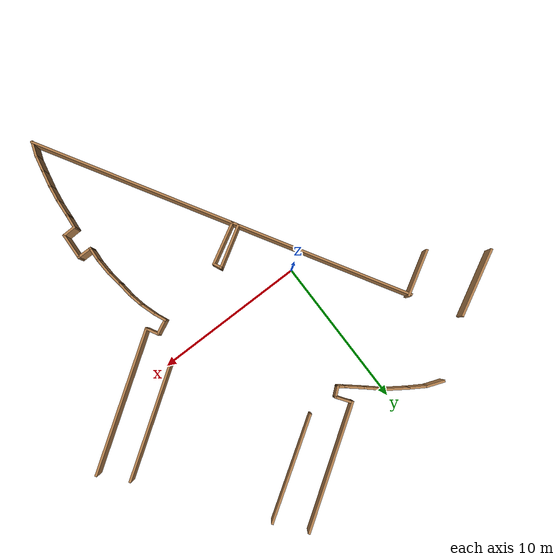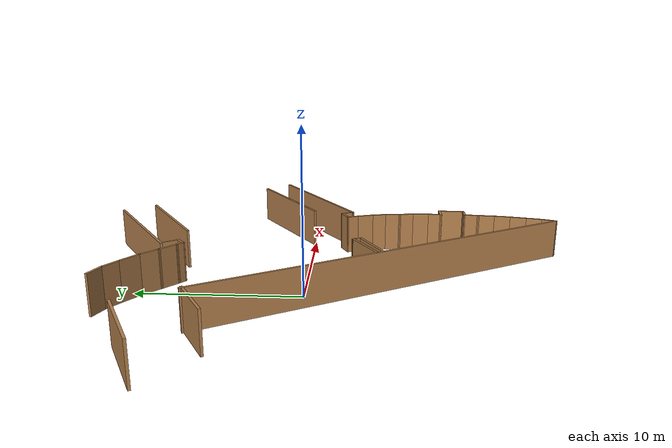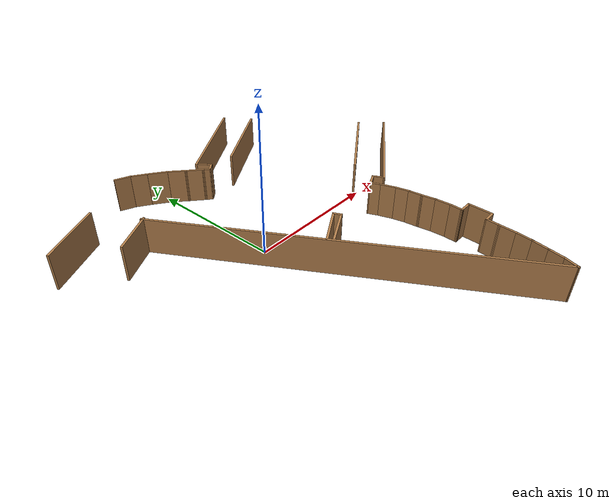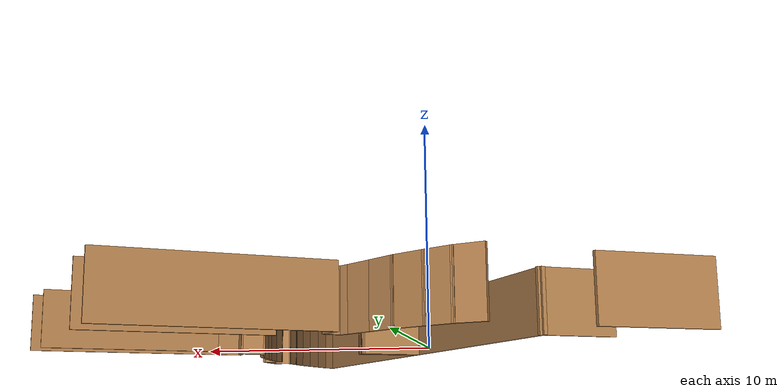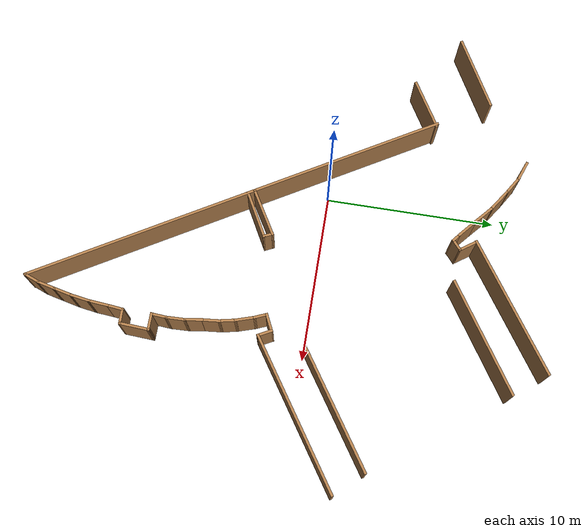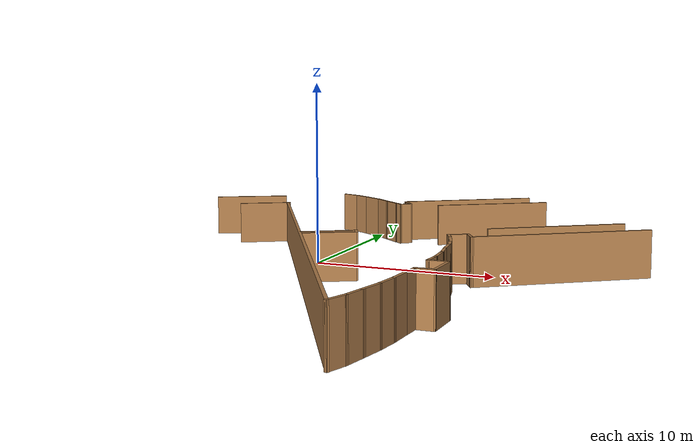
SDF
<?xml version='1.0'?>
<sdf version='1.6'>
  <model name='lobby'>
    <pose frame=''>3.40998 -1.30751 0 0 -0 0</pose>
    <link name='Wall_0'>
      <collision name='Wall_0_Collision'>
        <geometry>
          <box>
            <size>25.6992 0.15 2.5</size>
          </box>
        </geometry>
        <pose frame=''>0 0 1.25 0 -0 0</pose>
      </collision>
      <visual name='Wall_0_Visual'>
        <pose frame=''>0 0 1.25 0 -0 0</pose>
        <geometry>
          <box>
            <size>25.6992 0.15 2.5</size>
          </box>
        </geometry>
        <material>
          <script>
            <uri>file://media/materials/scripts/gazebo.material</uri>
            <name>Gazebo/Wood</name>
          </script>
          <ambient>0.309804 0.309804 0.309804 1</ambient>
        </material>
      </visual>
      <pose frame=''>-1.82314 -3.91274 0 0 0 -1.03666</pose>
    </link>
    <link name='Wall_10'>
      <collision name='Wall_10_Collision'>
        <geometry>
          <box>
            <size>1.05209 0.15 2.5</size>
          </box>
        </geometry>
        <pose frame=''>0 0 1.25 0 -0 0</pose>
      </collision>
      <visual name='Wall_10_Visual'>
        <pose frame=''>0 0 1.25 0 -0 0</pose>
        <geometry>
          <box>
            <size>1.05209 0.15 2.5</size>
          </box>
        </geometry>
        <material>
          <script>
            <uri>file://media/materials/scripts/gazebo.material</uri>
            <name>Gazebo/Wood</name>
          </script>
          <ambient>1 1 1 1</ambient>
        </material>
      </visual>
      <pose frame=''>6.25907 -7.36735 0 0 -0 3.14159</pose>
    </link>
    <link name='Wall_11'>
      <collision name='Wall_11_Collision'>
        <geometry>
          <box>
            <size>1.00886 0.15 2.5</size>
          </box>
        </geometry>
        <pose frame=''>0 0 1.25 0 -0 0</pose>
      </collision>
      <visual name='Wall_11_Visual'>
        <pose frame=''>0 0 1.25 0 -0 0</pose>
        <geometry>
          <box>
            <size>1.00886 0.15 2.5</size>
          </box>
        </geometry>
        <material>
          <script>
            <uri>file://media/materials/scripts/gazebo.material</uri>
            <name>Gazebo/Wood</name>
          </script>
          <ambient>1 1 1 1</ambient>
        </material>
      </visual>
      <pose frame=''>5.83894 -6.93903 0 0 -0 1.49873</pose>
    </link>
    <link name='Wall_12'>
      <collision name='Wall_12_Collision'>
        <geometry>
          <box>
            <size>1.20804 0.15 2.5</size>
          </box>
        </geometry>
        <pose frame=''>0 0 1.25 0 -0 0</pose>
      </collision>
      <visual name='Wall_12_Visual'>
        <pose frame=''>0 0 1.25 0 -0 0</pose>
        <geometry>
          <box>
            <size>1.20804 0.15 2.5</size>
          </box>
        </geometry>
        <material>
          <script>
            <uri>file://media/materials/scripts/gazebo.material</uri>
            <name>Gazebo/Wood</name>
          </script>
          <ambient>1 1 1 1</ambient>
        </material>
      </visual>
      <pose frame=''>5.85117 -5.98203 0 0 -0 1.60614</pose>
    </link>
    <link name='Wall_13'>
      <collision name='Wall_13_Collision'>
        <geometry>
          <box>
            <size>1.09089 0.15 2.5</size>
          </box>
        </geometry>
        <pose frame=''>0 0 1.25 0 -0 0</pose>
      </collision>
      <visual name='Wall_13_Visual'>
        <pose frame=''>0 0 1.25 0 -0 0</pose>
        <geometry>
          <box>
            <size>1.09089 0.15 2.5</size>
          </box>
        </geometry>
        <material>
          <script>
            <uri>file://media/materials/scripts/gazebo.material</uri>
            <name>Gazebo/Wood</name>
          </script>
          <ambient>1 1 1 1</ambient>
        </material>
      </visual>
      <pose frame=''>5.76269 -4.9881 0 0 -0 1.71969</pose>
    </link>
    <link name='Wall_14'>
      <collision name='Wall_14_Collision'>
        <geometry>
          <box>
            <size>1.13142 0.15 2.5</size>
          </box>
        </geometry>
        <pose frame=''>0 0 1.25 0 -0 0</pose>
      </collision>
      <visual name='Wall_14_Visual'>
        <pose frame=''>0 0 1.25 0 -0 0</pose>
        <geometry>
          <box>
            <size>1.13142 0.15 2.5</size>
          </box>
        </geometry>
        <material>
          <script>
            <uri>file://media/materials/scripts/gazebo.material</uri>
            <name>Gazebo/Wood</name>
          </script>
          <ambient>1 1 1 1</ambient>
        </material>
      </visual>
      <pose frame=''>5.64638 -4.03436 0 0 -0 1.66575</pose>
    </link>
    <link name='Wall_15'>
      <collision name='Wall_15_Collision'>
        <geometry>
          <box>
            <size>1.05333 0.15 2.5</size>
          </box>
        </geometry>
        <pose frame=''>0 0 1.25 0 -0 0</pose>
      </collision>
      <visual name='Wall_15_Visual'>
        <pose frame=''>0 0 1.25 0 -0 0</pose>
        <geometry>
          <box>
            <size>1.05333 0.15 2.5</size>
          </box>
        </geometry>
        <material>
          <script>
            <uri>file://media/materials/scripts/gazebo.material</uri>
            <name>Gazebo/Wood</name>
          </script>
          <ambient>1 1 1 1</ambient>
        </material>
      </visual>
      <pose frame=''>5.50681 -3.10388 0 0 -0 1.77829</pose>
    </link>
    <link name='Wall_16'>
      <collision name='Wall_16_Collision'>
        <geometry>
          <box>
            <size>1.22409 0.15 2.5</size>
          </box>
        </geometry>
        <pose frame=''>0 0 1.25 0 -0 0</pose>
      </collision>
      <visual name='Wall_16_Visual'>
        <pose frame=''>0 0 1.25 0 -0 0</pose>
        <geometry>
          <box>
            <size>1.22409 0.15 2.5</size>
          </box>
        </geometry>
        <material>
          <script>
            <uri>file://media/materials/scripts/gazebo.material</uri>
            <name>Gazebo/Wood</name>
          </script>
          <ambient>1 1 1 1</ambient>
        </material>
      </visual>
      <pose frame=''>5.25093 -2.15014 0 0 -0 1.87885</pose>
    </link>
    <link name='Wall_17'>
      <collision name='Wall_17_Collision'>
        <geometry>
          <box>
            <size>0.858631 0.15 2.5</size>
          </box>
        </geometry>
        <pose frame=''>0 0 1.25 0 -0 0</pose>
      </collision>
      <visual name='Wall_17_Visual'>
        <pose frame=''>0 0 1.25 0 -0 0</pose>
        <geometry>
          <box>
            <size>0.858631 0.15 2.5</size>
          </box>
        </geometry>
        <material>
          <script>
            <uri>file://media/materials/scripts/gazebo.material</uri>
            <name>Gazebo/Wood</name>
          </script>
          <ambient>1 1 1 1</ambient>
        </material>
      </visual>
      <pose frame=''>4.94852 -1.31271 0 0 -0 1.97569</pose>
    </link>
    <link name='Wall_18'>
      <collision name='Wall_18_Collision'>
        <geometry>
          <box>
            <size>1.12811 0.15 2.5</size>
          </box>
        </geometry>
        <pose frame=''>0 0 1.25 0 -0 0</pose>
      </collision>
      <visual name='Wall_18_Visual'>
        <pose frame=''>0 0 1.25 0 -0 0</pose>
        <geometry>
          <box>
            <size>1.12811 0.15 2.5</size>
          </box>
        </geometry>
        <material>
          <script>
            <uri>file://media/materials/scripts/gazebo.material</uri>
            <name>Gazebo/Wood</name>
          </script>
          <ambient>1 1 1 1</ambient>
        </material>
      </visual>
      <pose frame=''>5.25093 -0.777689 0 0 -0 0.442374</pose>
    </link>
    <link name='Wall_19'>
      <collision name='Wall_19_Collision'>
        <geometry>
          <box>
            <size>0.940907 0.15 2.5</size>
          </box>
        </geometry>
        <pose frame=''>0 0 1.25 0 -0 0</pose>
      </collision>
      <visual name='Wall_19_Visual'>
        <pose frame=''>0 0 1.25 0 -0 0</pose>
        <geometry>
          <box>
            <size>0.940907 0.15 2.5</size>
          </box>
        </geometry>
        <material>
          <script>
            <uri>file://media/materials/scripts/gazebo.material</uri>
            <name>Gazebo/Wood</name>
          </script>
          <ambient>1 1 1 1</ambient>
        </material>
      </visual>
      <pose frame=''>5.879 -0.91726 0 0 0 -1.08084</pose>
    </link>
    <link name='Wall_2'>
      <collision name='Wall_2_Collision'>
        <geometry>
          <box>
            <size>1.04138 0.15 2.5</size>
          </box>
        </geometry>
        <pose frame=''>0 0 1.25 0 -0 0</pose>
      </collision>
      <visual name='Wall_2_Visual'>
        <pose frame=''>0 0 1.25 0 -0 0</pose>
        <geometry>
          <box>
            <size>1.04138 0.15 2.5</size>
          </box>
        </geometry>
        <material>
          <script>
            <uri>file://media/materials/scripts/gazebo.material</uri>
            <name>Gazebo/Wood</name>
          </script>
          <ambient>1 1 1 1</ambient>
        </material>
      </visual>
      <pose frame=''>4.83943 -14.4916 0 0 -0 1.20596</pose>
    </link>
    <link name='Wall_21'>
      <collision name='Wall_21_Collision'>
        <geometry>
          <box>
            <size>9.71451 0.15 2.5</size>
          </box>
        </geometry>
        <pose frame=''>0 0 1.25 0 -0 0</pose>
      </collision>
      <visual name='Wall_21_Visual'>
        <pose frame=''>0 0 1.25 0 -0 0</pose>
        <geometry>
          <box>
            <size>9.71451 0.15 2.5</size>
          </box>
        </geometry>
        <material>
          <script>
            <uri>file://media/materials/scripts/gazebo.material</uri>
            <name>Gazebo/Wood</name>
          </script>
          <ambient>1 1 1 1</ambient>
        </material>
      </visual>
      <pose frame=''>10.0317 1.4051 0 0 -0 0.592678</pose>
    </link>
    <link name='Wall_23'>
      <collision name='Wall_23_Collision'>
        <geometry>
          <box>
            <size>7.7244 0.15 2.5</size>
          </box>
        </geometry>
        <pose frame=''>0 0 1.25 0 -0 0</pose>
      </collision>
      <visual name='Wall_23_Visual'>
        <pose frame=''>0 0 1.25 0 -0 0</pose>
        <geometry>
          <box>
            <size>7.7244 0.15 2.5</size>
          </box>
        </geometry>
        <material>
          <script>
            <uri>file://media/materials/scripts/gazebo.material</uri>
            <name>Gazebo/Wood</name>
          </script>
          <ambient>1 1 1 1</ambient>
        </material>
      </visual>
      <pose frame=''>9.41575 3.54137 0 0 -0 0.593113</pose>
    </link>
    <link name='Wall_25'>
      <collision name='Wall_25_Collision'>
        <geometry>
          <box>
            <size>1.22723 0.15 2.5</size>
          </box>
        </geometry>
        <pose frame=''>0 0 1.25 0 -0 0</pose>
      </collision>
      <visual name='Wall_25_Visual'>
        <pose frame=''>0 0 1.25 0 -0 0</pose>
        <geometry>
          <box>
            <size>1.22723 0.15 2.5</size>
          </box>
        </geometry>
        <material>
          <script>
            <uri>file://media/materials/scripts/gazebo.material</uri>
            <name>Gazebo/Wood</name>
          </script>
          <ambient>1 1 1 1</ambient>
        </material>
      </visual>
      <pose frame=''>-6.13059 12.387 0 0 0 -0.35299</pose>
    </link>
    <link name='Wall_26'>
      <collision name='Wall_26_Collision'>
        <geometry>
          <box>
            <size>1.30886 0.15 2.5</size>
          </box>
        </geometry>
        <pose frame=''>0 0 1.25 0 -0 0</pose>
      </collision>
      <visual name='Wall_26_Visual'>
        <pose frame=''>0 0 1.25 0 -0 0</pose>
        <geometry>
          <box>
            <size>1.30886 0.15 2.5</size>
          </box>
        </geometry>
        <material>
          <script>
            <uri>file://media/materials/scripts/gazebo.material</uri>
            <name>Gazebo/Wood</name>
          </script>
          <ambient>1 1 1 1</ambient>
        </material>
      </visual>
      <pose frame=''>-5.13308 11.8949 0 0 0 -0.556166</pose>
    </link>
    <link name='Wall_27'>
      <collision name='Wall_27_Collision'>
        <geometry>
          <box>
            <size>1.56657 0.15 2.5</size>
          </box>
        </geometry>
        <pose frame=''>0 0 1.25 0 -0 0</pose>
      </collision>
      <visual name='Wall_27_Visual'>
        <pose frame=''>0 0 1.25 0 -0 0</pose>
        <geometry>
          <box>
            <size>1.56657 0.15 2.5</size>
          </box>
        </geometry>
        <material>
          <script>
            <uri>file://media/materials/scripts/gazebo.material</uri>
            <name>Gazebo/Wood</name>
          </script>
          <ambient>1 1 1 1</ambient>
        </material>
      </visual>
      <pose frame=''>-4.05577 11.19 0 0 0 -0.598419</pose>
    </link>
    <link name='Wall_28'>
      <collision name='Wall_28_Collision'>
        <geometry>
          <box>
            <size>1.43124 0.15 2.5</size>
          </box>
        </geometry>
        <pose frame=''>0 0 1.25 0 -0 0</pose>
      </collision>
      <visual name='Wall_28_Visual'>
        <pose frame=''>0 0 1.25 0 -0 0</pose>
        <geometry>
          <box>
            <size>1.43124 0.15 2.5</size>
          </box>
        </geometry>
        <material>
          <script>
            <uri>file://media/materials/scripts/gazebo.material</uri>
            <name>Gazebo/Wood</name>
          </script>
          <ambient>1 1 1 1</ambient>
        </material>
      </visual>
      <pose frame=''>-2.99177 10.3654 0 0 0 -0.726642</pose>
    </link>
    <link name='Wall_29'>
      <collision name='Wall_29_Collision'>
        <geometry>
          <box>
            <size>1.37621 0.15 2.5</size>
          </box>
        </geometry>
        <pose frame=''>0 0 1.25 0 -0 0</pose>
      </collision>
      <visual name='Wall_29_Visual'>
        <pose frame=''>0 0 1.25 0 -0 0</pose>
        <geometry>
          <box>
            <size>1.37621 0.15 2.5</size>
          </box>
        </geometry>
        <material>
          <script>
            <uri>file://media/materials/scripts/gazebo.material</uri>
            <name>Gazebo/Wood</name>
          </script>
          <ambient>1 1 1 1</ambient>
        </material>
      </visual>
      <pose frame=''>-2.04746 9.54081 0 0 0 -0.708626</pose>
    </link>
    <link name='Wall_3'>
      <collision name='Wall_3_Collision'>
        <geometry>
          <box>
            <size>1.17116 0.15 2.5</size>
          </box>
        </geometry>
        <pose frame=''>0 0 1.25 0 -0 0</pose>
      </collision>
      <visual name='Wall_3_Visual'>
        <pose frame=''>0 0 1.25 0 -0 0</pose>
        <geometry>
          <box>
            <size>1.17116 0.15 2.5</size>
          </box>
        </geometry>
        <material>
          <script>
            <uri>file://media/materials/scripts/gazebo.material</uri>
            <name>Gazebo/Wood</name>
          </script>
          <ambient>1 1 1 1</ambient>
        </material>
      </visual>
      <pose frame=''>5.1141 -13.5779 0 0 -0 1.3423</pose>
    </link>
    <link name='Wall_30'>
      <collision name='Wall_30_Collision'>
        <geometry>
          <box>
            <size>0.623603 0.15 2.5</size>
          </box>
        </geometry>
        <pose frame=''>0 0 1.25 0 -0 0</pose>
      </collision>
      <visual name='Wall_30_Visual'>
        <pose frame=''>0 0 1.25 0 -0 0</pose>
        <geometry>
          <box>
            <size>0.623603 0.15 2.5</size>
          </box>
        </geometry>
        <material>
          <script>
            <uri>file://media/materials/scripts/gazebo.material</uri>
            <name>Gazebo/Wood</name>
          </script>
          <ambient>1 1 1 1</ambient>
        </material>
      </visual>
      <pose frame=''>-1.39576 8.9955 0 0 0 -0.665969</pose>
    </link>
    <link name='Wall_31'>
      <collision name='Wall_31_Collision'>
        <geometry>
          <box>
            <size>0.810735 0.15 2.5</size>
          </box>
        </geometry>
        <pose frame=''>0 0 1.25 0 -0 0</pose>
      </collision>
      <visual name='Wall_31_Visual'>
        <pose frame=''>0 0 1.25 0 -0 0</pose>
        <geometry>
          <box>
            <size>0.810735 0.15 2.5</size>
          </box>
        </geometry>
        <material>
          <script>
            <uri>file://media/materials/scripts/gazebo.material</uri>
            <name>Gazebo/Wood</name>
          </script>
          <ambient>1 1 1 1</ambient>
        </material>
      </visual>
      <pose frame=''>-0.956852 9.062 0 0 -0 0.699893</pose>
    </link>
    <link name='Wall_32'>
      <collision name='Wall_32_Collision'>
        <geometry>
          <box>
            <size>1.12409 0.15 2.5</size>
          </box>
        </geometry>
        <pose frame=''>0 0 1.25 0 -0 0</pose>
      </collision>
      <visual name='Wall_32_Visual'>
        <pose frame=''>0 0 1.25 0 -0 0</pose>
        <geometry>
          <box>
            <size>1.12409 0.15 2.5</size>
          </box>
        </geometry>
        <material>
          <script>
            <uri>file://media/materials/scripts/gazebo.material</uri>
            <name>Gazebo/Wood</name>
          </script>
          <ambient>1 1 1 1</ambient>
        </material>
      </visual>
      <pose frame=''>-0.983452 9.6738 0 0 -0 2.18152</pose>
    </link>
    <link name='Wall_34'>
      <collision name='Wall_34_Collision'>
        <geometry>
          <box>
            <size>7.20846 0.15 2.5</size>
          </box>
        </geometry>
        <pose frame=''>0 0 1.25 0 -0 0</pose>
      </collision>
      <visual name='Wall_34_Visual'>
        <pose frame=''>0 0 1.25 0 -0 0</pose>
        <geometry>
          <box>
            <size>7.20846 0.15 2.5</size>
          </box>
        </geometry>
        <material>
          <script>
            <uri>file://media/materials/scripts/gazebo.material</uri>
            <name>Gazebo/Wood</name>
          </script>
          <ambient>1 1 1 1</ambient>
        </material>
      </visual>
      <pose frame=''>4.16693 11.1149 0 0 -0 0.578862</pose>
    </link>
    <link name='Wall_36'>
      <collision name='Wall_36_Collision'>
        <geometry>
          <box>
            <size>8.6277 0.15 2.5</size>
          </box>
        </geometry>
        <pose frame=''>0 0 1.25 0 -0 0</pose>
      </collision>
      <visual name='Wall_36_Visual'>
        <pose frame=''>0 0 1.25 0 -0 0</pose>
        <geometry>
          <box>
            <size>8.6277 0.15 2.5</size>
          </box>
        </geometry>
        <material>
          <script>
            <uri>file://media/materials/scripts/gazebo.material</uri>
            <name>Gazebo/Wood</name>
          </script>
          <ambient>1 1 1 1</ambient>
        </material>
      </visual>
      <pose frame=''>2.16641 12.5338 0 0 -0 0.594091</pose>
    </link>
    <link name='Wall_38'>
      <collision name='Wall_38_Collision'>
        <geometry>
          <box>
            <size>3.17405 0.15 2.5</size>
          </box>
        </geometry>
        <pose frame=''>0 0 1.25 0 -0 0</pose>
      </collision>
      <visual name='Wall_38_Visual'>
        <pose frame=''>0 0 1.25 0 -0 0</pose>
        <geometry>
          <box>
            <size>3.17405 0.15 2.5</size>
          </box>
        </geometry>
        <material>
          <script>
            <uri>file://media/materials/scripts/gazebo.material</uri>
            <name>Gazebo/Wood</name>
          </script>
          <ambient>1 1 1 1</ambient>
        </material>
      </visual>
      <pose frame=''>-9.48783 6.27636 0 0 0 -2.60909</pose>
    </link>
    <link name='Wall_4'>
      <collision name='Wall_4_Collision'>
        <geometry>
          <box>
            <size>1.21627 0.15 2.5</size>
          </box>
        </geometry>
        <pose frame=''>0 0 1.25 0 -0 0</pose>
      </collision>
      <visual name='Wall_4_Visual'>
        <pose frame=''>0 0 1.25 0 -0 0</pose>
        <geometry>
          <box>
            <size>1.21627 0.15 2.5</size>
          </box>
        </geometry>
        <material>
          <script>
            <uri>file://media/materials/scripts/gazebo.material</uri>
            <name>Gazebo/Wood</name>
          </script>
          <ambient>1 1 1 1</ambient>
        </material>
      </visual>
      <pose frame=''>5.34541 -12.5602 0 0 -0 1.35213</pose>
    </link>
    <link name='Wall_42'>
      <collision name='Wall_42_Collision'>
        <geometry>
          <box>
            <size>4.60562 0.15 2.5</size>
          </box>
        </geometry>
        <pose frame=''>0 0 1.25 0 -0 0</pose>
      </collision>
      <visual name='Wall_42_Visual'>
        <pose frame=''>0 0 1.25 0 -0 0</pose>
        <geometry>
          <box>
            <size>4.60562 0.15 2.5</size>
          </box>
        </geometry>
        <material>
          <script>
            <uri>file://media/materials/scripts/gazebo.material</uri>
            <name>Gazebo/Wood</name>
          </script>
          <ambient>0.309804 0.309804 0.309804 1</ambient>
        </material>
      </visual>
      <pose frame=''>-12.0466 8.99801 0 0 0 -2.64058</pose>
    </link>
    <link name='Wall_46'>
      <collision name='Wall_46_Collision'>
        <geometry>
          <box>
            <size>2.95986 0.15 2.5</size>
          </box>
        </geometry>
        <pose frame=''>0 0 1.25 0 -0 0</pose>
      </collision>
      <visual name='Wall_46_Visual'>
        <pose frame=''>0 0 1.25 0 -0 0</pose>
        <geometry>
          <box>
            <size>2.95986 0.15 2.5</size>
          </box>
        </geometry>
        <material>
          <script>
            <uri>file://media/materials/scripts/gazebo.material</uri>
            <name>Gazebo/Wood</name>
          </script>
          <ambient>1 1 1 1</ambient>
        </material>
      </visual>
      <pose frame=''>-0.958945 -2.59343 0 0 -0 0.499843</pose>
    </link>
    <link name='Wall_47'>
      <collision name='Wall_47_Collision'>
        <geometry>
          <box>
            <size>0.650839 0.15 2.5</size>
          </box>
        </geometry>
        <pose frame=''>0 0 1.25 0 -0 0</pose>
      </collision>
      <visual name='Wall_47_Visual'>
        <pose frame=''>0 0 1.25 0 -0 0</pose>
        <geometry>
          <box>
            <size>0.650839 0.15 2.5</size>
          </box>
        </geometry>
        <material>
          <script>
            <uri>file://media/materials/scripts/gazebo.material</uri>
            <name>Gazebo/Wood</name>
          </script>
          <ambient>1 1 1 1</ambient>
        </material>
      </visual>
      <pose frame=''>0.169164 -1.69269 0 0 -0 2.0032</pose>
    </link>
    <link name='Wall_48'>
      <collision name='Wall_48_Collision'>
        <geometry>
          <box>
            <size>2.97263 0.15 2.5</size>
          </box>
        </geometry>
        <pose frame=''>0 0 1.25 0 -0 0</pose>
      </collision>
      <visual name='Wall_48_Visual'>
        <pose frame=''>0 0 1.25 0 -0 0</pose>
        <geometry>
          <box>
            <size>2.97263 0.15 2.5</size>
          </box>
        </geometry>
        <material>
          <script>
            <uri>file://media/materials/scripts/gazebo.material</uri>
            <name>Gazebo/Wood</name>
          </script>
          <ambient>1 1 1 1</ambient>
        </material>
      </visual>
      <pose frame=''>-1.15134 -2.18241 0 0 0 -2.60861</pose>
    </link>
    <link name='Wall_5'>
      <collision name='Wall_5_Collision'>
        <geometry>
          <box>
            <size>1.20339 0.15 2.5</size>
          </box>
        </geometry>
        <pose frame=''>0 0 1.25 0 -0 0</pose>
      </collision>
      <visual name='Wall_5_Visual'>
        <pose frame=''>0 0 1.25 0 -0 0</pose>
        <geometry>
          <box>
            <size>1.20339 0.15 2.5</size>
          </box>
        </geometry>
        <material>
          <script>
            <uri>file://media/materials/scripts/gazebo.material</uri>
            <name>Gazebo/Wood</name>
          </script>
          <ambient>1 1 1 1</ambient>
        </material>
      </visual>
      <pose frame=''>5.54202 -11.5193 0 0 -0 1.41648</pose>
    </link>
    <link name='Wall_6'>
      <collision name='Wall_6_Collision'>
        <geometry>
          <box>
            <size>1.24107 0.15 2.5</size>
          </box>
        </geometry>
        <pose frame=''>0 0 1.25 0 -0 0</pose>
      </collision>
      <visual name='Wall_6_Visual'>
        <pose frame=''>0 0 1.25 0 -0 0</pose>
        <geometry>
          <box>
            <size>1.24107 0.15 2.5</size>
          </box>
        </geometry>
        <material>
          <script>
            <uri>file://media/materials/scripts/gazebo.material</uri>
            <name>Gazebo/Wood</name>
          </script>
          <ambient>1 1 1 1</ambient>
        </material>
      </visual>
      <pose frame=''>5.66924 -10.4553 0 0 -0 1.48589</pose>
    </link>
    <link name='Wall_7'>
      <collision name='Wall_7_Collision'>
        <geometry>
          <box>
            <size>1.03382 0.15 2.5</size>
          </box>
        </geometry>
        <pose frame=''>0 0 1.25 0 -0 0</pose>
      </collision>
      <visual name='Wall_7_Visual'>
        <pose frame=''>0 0 1.25 0 -0 0</pose>
        <geometry>
          <box>
            <size>1.03382 0.15 2.5</size>
          </box>
        </geometry>
        <material>
          <script>
            <uri>file://media/materials/scripts/gazebo.material</uri>
            <name>Gazebo/Wood</name>
          </script>
          <ambient>1 1 1 1</ambient>
        </material>
      </visual>
      <pose frame=''>5.76176 -9.47224 0 0 -0 1.46592</pose>
    </link>
    <link name='Wall_8'>
      <collision name='Wall_8_Collision'>
        <geometry>
          <box>
            <size>0.959902 0.15 2.5</size>
          </box>
        </geometry>
        <pose frame=''>0 0 1.25 0 -0 0</pose>
      </collision>
      <visual name='Wall_8_Visual'>
        <pose frame=''>0 0 1.25 0 -0 0</pose>
        <geometry>
          <box>
            <size>0.959902 0.15 2.5</size>
          </box>
        </geometry>
        <material>
          <script>
            <uri>file://media/materials/scripts/gazebo.material</uri>
            <name>Gazebo/Wood</name>
          </script>
          <ambient>1 1 1 1</ambient>
        </material>
      </visual>
      <pose frame=''>6.21281 -9.02119 0 0 -0 0.028564</pose>
    </link>
    <link name='Wall_9'>
      <collision name='Wall_9_Collision'>
        <geometry>
          <box>
            <size>1.79488 0.15 2.5</size>
          </box>
        </geometry>
        <pose frame=''>0 0 1.25 0 -0 0</pose>
      </collision>
      <visual name='Wall_9_Visual'>
        <pose frame=''>0 0 1.25 0 -0 0</pose>
        <geometry>
          <box>
            <size>1.79488 0.15 2.5</size>
          </box>
        </geometry>
        <material>
          <script>
            <uri>file://media/materials/scripts/gazebo.material</uri>
            <name>Gazebo/Wood</name>
          </script>
          <ambient>1 1 1 1</ambient>
        </material>
      </visual>
      <pose frame=''>6.66385 -8.18849 0 0 -0 1.51452</pose>
    </link>
    <static>1</static>
  </model>
</sdf>
